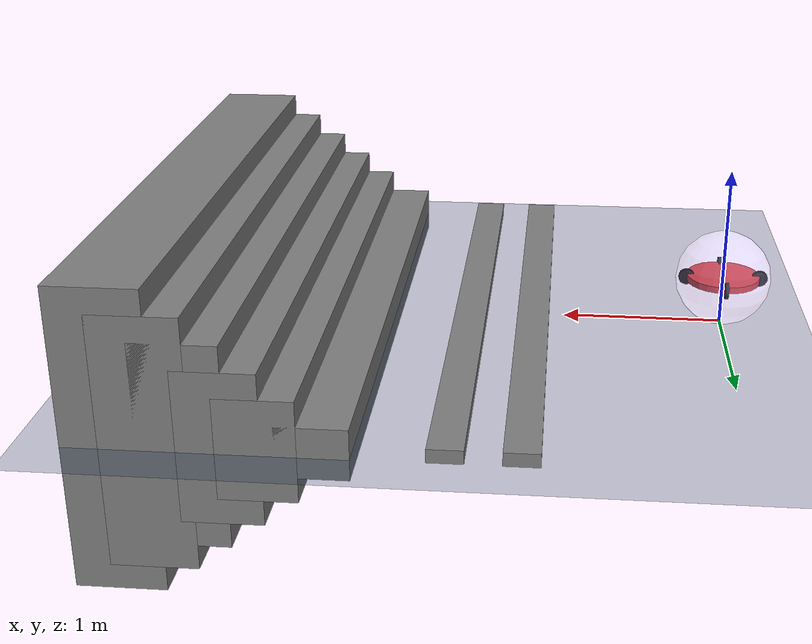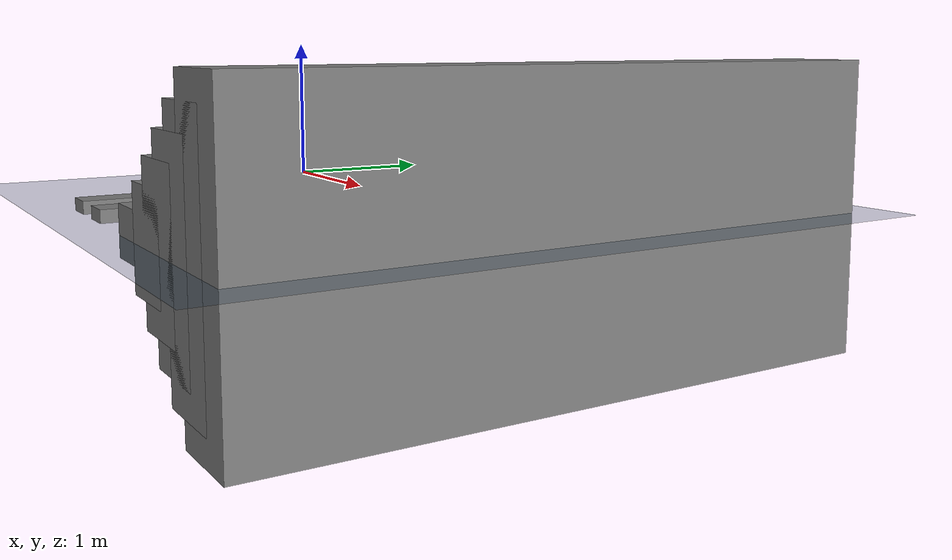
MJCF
<mujoco model="go2 scene">
  <include file="bb-8.xml"/>

  <statistic center="0 0 0.1" extent="0.8"/>

  <visual>
    <headlight diffuse="0.6 0.6 0.6" ambient="0.3 0.3 0.3" specular="0 0 0"/>
    <rgba haze="0.15 0.25 0.35 1"/>
    <global azimuth="-130" elevation="-20"/>
  </visual>

  <asset>
    <texture type="skybox" builtin="gradient" rgb1="0.3 0.5 0.7" rgb2="0 0 0" width="512" height="3072"/>
    <texture type="2d" name="groundplane" builtin="checker" mark="edge" rgb1="0.2 0.3 0.4" rgb2="0.1 0.2 0.3"
      markrgb="0.8 0.8 0.8" width="300" height="300"/>
    <material name="groundplane" texture="groundplane" texuniform="true" texrepeat="5 5" reflectance="0.2"/>
  </asset>

  <worldbody>
    <light pos="0 0 1.5" dir="0 0 -1" directional="true"/>
    <geom name="floor" size="0 0 0.05" type="plane" material="groundplane"/>

    <geom pos="1.2 0 0.04" type="box"  size="0.1 2 0.04" quat="1.0 0 0 0"/>
    <geom pos="1.6 0 0.04" type="box"  size="0.1 2 0.04" quat="1.0 0 0 0"/>

    <geom pos="2.3 0 0.02" type="box"  size="0.2 2 0.15" quat="1.0 0 0 0"/>
    <geom pos="2.6 0 0.02" type="box"  size="0.22 2 0.3" quat="1.0 0 0 0"/>
    <geom pos="2.8 0 0.02" type="box"  size="0.23 2 0.45" quat="1.0 0 0 0"/>
    <geom pos="3 0 0.02" type="box"  size="0.24 2 0.6" quat="1.0 0 0 0"/>
    <geom pos="3.2 0 0.02" type="box"  size="0.25 2 0.75" quat="1.0 0 0 0"/>
    <geom pos="3.4 0 0.02" type="box"  size="0.26 2 0.9" quat="1.0 0 0 0"/>
  </worldbody>
</mujoco>

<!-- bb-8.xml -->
<mujoco model="bb8_xray">
  <option timestep="0.002" gravity="0 0 -9.81"/>
  <visual>
    <rgba haze="0.1 0.1 0.1 1"/>
  </visual>

  <worldbody>

    <!-- Outer sphere -->
    <body name="sphere" pos="0 0 0.3">
      <joint type="free"/>

      <!-- Transparent shell -->
      <geom type="sphere"
            size="0.3"
            mass="5"
            rgba="0.7 0.7 1 0.25"
            friction="1 0.005 0.0001"/>

      <!-- Internal cart -->
      <body name="cart" pos="0 0 0">
        <!-- Cartesian motion inside sphere -->
        <joint name="cart_x" type="slide" axis="1 0 0" range="-0.15 0.15"/>
        <joint name="cart_y" type="slide" axis="0 1 0" range="-0.15 0.15"/>

        <!-- Cart chassis -->
        <geom type="cylinder"
              size="0.23 0.02"
              mass="2"
              rgba="0.9 0.2 0.2 1"/>

        <!-- Four internal wheels -->
        <geom type="cylinder"
              pos="0.23 0 0"
              size="0.05 0.01"
              quat="0.5 0.5 -0.5 0.5"
              mass="0.2"
              rgba="0.1 0.1 0.1 1"/>

        <geom type="cylinder"
              pos="-0.23 0 0"
              size="0.05 0.01"
              quat="0.5 0.5 -0.5 0.5"
              mass="0.2"
              rgba="0.1 0.1 0.1 1"/>

        <geom type="cylinder"
              pos="0 0.23 0"
              size="0.05 0.01"
              quat="0.5 0.5 0.5 0.5"
              mass="0.2"
              rgba="0.1 0.1 0.1 1"/>

        <geom type="cylinder"
              pos="0 -0.23 0"
              size="0.05 0.01"
              quat="0.5 0.5 0.5 0.5"
              mass="0.2"
              rgba="0.1 0.1 0.1 1"/>

      </body>
    </body>
  </worldbody>

  <!-- Actuation -->
  <actuator>
  <motor name="cart_x" joint="cart_x"
         ctrlrange="-10 10" ctrllimited="true"/>
  <motor name="cart_y" joint="cart_y"
         ctrlrange="-10 10" ctrllimited="true"/>
  </actuator>
</mujoco>
